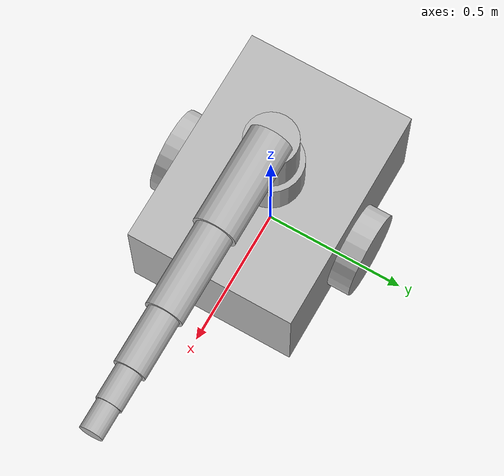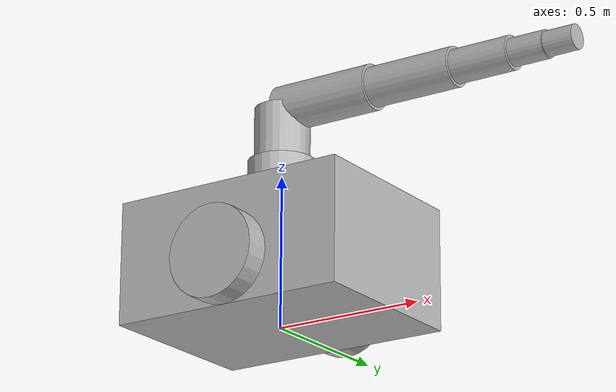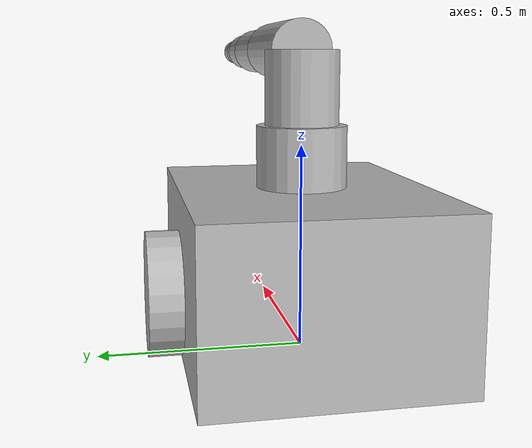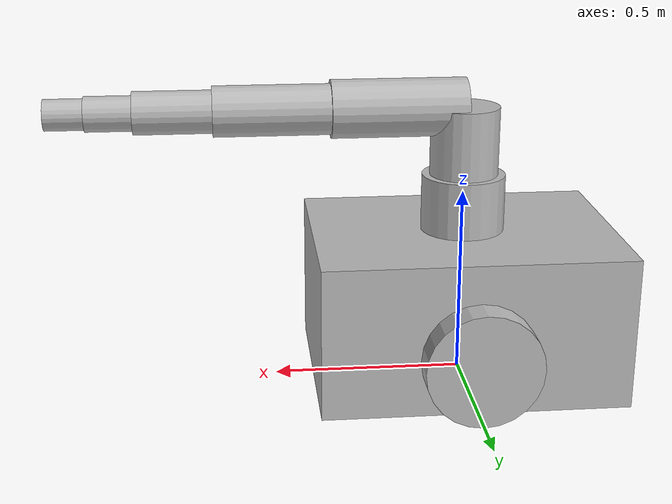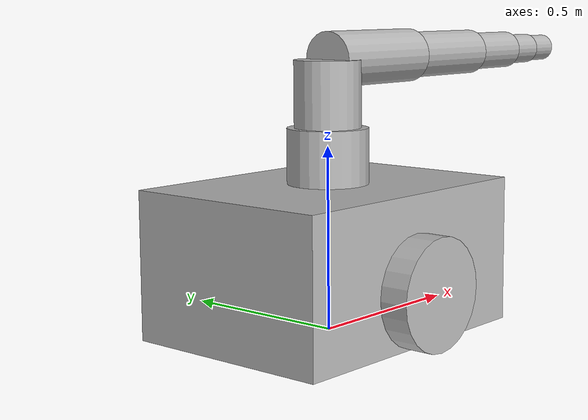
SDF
<?xml version='1.0' encoding='utf-8'?>
<sdf version="1.12">
  <model name="reference_mobile_manipulator">
    <static>false</static>
    <link name="base_link">
      <inertial>
        <mass>100</mass>
        <inertia>
          <ixx>8</ixx>
          <iyy>10</iyy>
          <izz>12</izz>
          <ixy>0</ixy>
          <ixz>0</ixz>
          <iyz>0</iyz>
        </inertia>
      </inertial>
      <visual name="base_link_visual">
        <pose relative_to="base_link">0 0 0.2 0 0 0</pose>
        <geometry>
          <box>
            <size>0.8 0.6 0.4</size>
          </box>
        </geometry>
      </visual>
      <collision name="base_link_collision">
        <pose relative_to="base_link">0 0 0.2 0 0 0</pose>
        <geometry>
          <box>
            <size>0.8 0.6 0.4</size>
          </box>
        </geometry>
      </collision>
      <visual name="base_link_arm_mount_visual">
        <pose relative_to="base_link">0 0 0.475 0 0 0</pose>
        <geometry>
          <cylinder>
            <radius>0.11</radius>
            <length>0.15</length>
          </cylinder>
        </geometry>
      </visual>
      <collision name="base_link_arm_mount_collision">
        <pose relative_to="base_link">0 0 0.475 0 0 0</pose>
        <geometry>
          <cylinder>
            <radius>0.11</radius>
            <length>0.15</length>
          </cylinder>
        </geometry>
      </collision>
      <sensor name="base_imu" type="imu">
        <update_rate>100</update_rate>
        <topic>/imu/data</topic>
      </sensor>
    </link>
    <link name="left_wheel_link">
      <inertial>
        <mass>5</mass>
        <inertia>
          <ixx>0.03</ixx>
          <iyy>0.06</iyy>
          <izz>0.03</izz>
          <ixy>0</ixy>
          <ixz>0</ixz>
          <iyz>0</iyz>
        </inertia>
      </inertial>
      <pose relative_to="base_link">0 0.34 0.15 0 0 0</pose>
      <visual name="left_wheel_link_visual">
        <pose relative_to="left_wheel_link">0 0 0 1.57079632679 0 0</pose>
        <geometry>
          <cylinder>
            <radius>0.15</radius>
            <length>0.08</length>
          </cylinder>
        </geometry>
      </visual>
      <collision name="left_wheel_link_collision">
        <pose relative_to="left_wheel_link">0 0 0 1.57079632679 0 0</pose>
        <geometry>
          <cylinder>
            <radius>0.15</radius>
            <length>0.08</length>
          </cylinder>
        </geometry>
      </collision>
    </link>
    <joint name="left_wheel_joint" type="continuous">
      <parent>base_link</parent>
      <child>left_wheel_link</child>
      <axis>
        <xyz>0 1 0</xyz>
      </axis>
    </joint>
    <link name="right_wheel_link">
      <inertial>
        <mass>5</mass>
        <inertia>
          <ixx>0.03</ixx>
          <iyy>0.06</iyy>
          <izz>0.03</izz>
          <ixy>0</ixy>
          <ixz>0</ixz>
          <iyz>0</iyz>
        </inertia>
      </inertial>
      <pose relative_to="base_link">0 -0.34 0.15 0 0 0</pose>
      <visual name="right_wheel_link_visual">
        <pose relative_to="right_wheel_link">0 0 0 1.57079632679 0 0</pose>
        <geometry>
          <cylinder>
            <radius>0.15</radius>
            <length>0.08</length>
          </cylinder>
        </geometry>
      </visual>
      <collision name="right_wheel_link_collision">
        <pose relative_to="right_wheel_link">0 0 0 1.57079632679 0 0</pose>
        <geometry>
          <cylinder>
            <radius>0.15</radius>
            <length>0.08</length>
          </cylinder>
        </geometry>
      </collision>
    </link>
    <joint name="right_wheel_joint" type="continuous">
      <parent>base_link</parent>
      <child>right_wheel_link</child>
      <axis>
        <xyz>0 1 0</xyz>
      </axis>
    </joint>
    <link name="arm_link_1">
      <pose relative_to="base_link">0 0 0.55 0 0 0</pose>
      <inertial>
        <mass>8</mass>
        <inertia>
          <ixx>0.12</ixx>
          <iyy>0.12</iyy>
          <izz>0.08</izz>
          <ixy>0</ixy>
          <ixz>0</ixz>
          <iyz>0</iyz>
        </inertia>
      </inertial>
      <visual name="arm_link_1_visual">
        <pose relative_to="arm_link_1">0 0 0.09 0 0 0</pose>
        <geometry>
          <cylinder>
            <radius>0.09</radius>
            <length>0.18</length>
          </cylinder>
        </geometry>
      </visual>
      <collision name="arm_link_1_collision">
        <pose relative_to="arm_link_1">0 0 0.09 0 0 0</pose>
        <geometry>
          <cylinder>
            <radius>0.09</radius>
            <length>0.18</length>
          </cylinder>
        </geometry>
      </collision>
    </link>
    <link name="arm_link_2">
      <pose relative_to="arm_link_1">0 0 0.18 0 0 0</pose>
      <inertial>
        <mass>7</mass>
        <inertia>
          <ixx>0.1</ixx>
          <iyy>0.1</iyy>
          <izz>0.06</izz>
          <ixy>0</ixy>
          <ixz>0</ixz>
          <iyz>0</iyz>
        </inertia>
      </inertial>
      <visual name="arm_link_2_visual">
        <pose relative_to="arm_link_2">0.175 0 0 0 1.57079632679 0</pose>
        <geometry>
          <cylinder>
            <radius>0.075</radius>
            <length>0.35</length>
          </cylinder>
        </geometry>
      </visual>
      <collision name="arm_link_2_collision">
        <pose relative_to="arm_link_2">0.175 0 0 0 1.57079632679 0</pose>
        <geometry>
          <cylinder>
            <radius>0.075</radius>
            <length>0.35</length>
          </cylinder>
        </geometry>
      </collision>
    </link>
    <link name="arm_link_3">
      <pose relative_to="arm_link_2">0.35 0 0 0 0 0</pose>
      <inertial>
        <mass>5</mass>
        <inertia>
          <ixx>0.07</ixx>
          <iyy>0.07</iyy>
          <izz>0.04</izz>
          <ixy>0</ixy>
          <ixz>0</ixz>
          <iyz>0</iyz>
        </inertia>
      </inertial>
      <visual name="arm_link_3_visual">
        <pose relative_to="arm_link_3">0.15 0 0 0 1.57079632679 0</pose>
        <geometry>
          <cylinder>
            <radius>0.065</radius>
            <length>0.3</length>
          </cylinder>
        </geometry>
      </visual>
      <collision name="arm_link_3_collision">
        <pose relative_to="arm_link_3">0.15 0 0 0 1.57079632679 0</pose>
        <geometry>
          <cylinder>
            <radius>0.065</radius>
            <length>0.3</length>
          </cylinder>
        </geometry>
      </collision>
    </link>
    <link name="arm_link_4">
      <pose relative_to="arm_link_3">0.3 0 0 0 0 0</pose>
      <inertial>
        <mass>4</mass>
        <inertia>
          <ixx>0.05</ixx>
          <iyy>0.05</iyy>
          <izz>0.03</izz>
          <ixy>0</ixy>
          <ixz>0</ixz>
          <iyz>0</iyz>
        </inertia>
      </inertial>
      <visual name="arm_link_4_visual">
        <pose relative_to="arm_link_4">0.1 0 0 0 1.57079632679 0</pose>
        <geometry>
          <cylinder>
            <radius>0.055</radius>
            <length>0.2</length>
          </cylinder>
        </geometry>
      </visual>
      <collision name="arm_link_4_collision">
        <pose relative_to="arm_link_4">0.1 0 0 0 1.57079632679 0</pose>
        <geometry>
          <cylinder>
            <radius>0.055</radius>
            <length>0.2</length>
          </cylinder>
        </geometry>
      </collision>
    </link>
    <link name="arm_link_5">
      <pose relative_to="arm_link_4">0.2 0 0 0 0 0</pose>
      <inertial>
        <mass>3</mass>
        <inertia>
          <ixx>0.03</ixx>
          <iyy>0.03</iyy>
          <izz>0.02</izz>
          <ixy>0</ixy>
          <ixz>0</ixz>
          <iyz>0</iyz>
        </inertia>
      </inertial>
      <visual name="arm_link_5_visual">
        <pose relative_to="arm_link_5">0.06 0 0 0 1.57079632679 0</pose>
        <geometry>
          <cylinder>
            <radius>0.045</radius>
            <length>0.12</length>
          </cylinder>
        </geometry>
      </visual>
      <collision name="arm_link_5_collision">
        <pose relative_to="arm_link_5">0.06 0 0 0 1.57079632679 0</pose>
        <geometry>
          <cylinder>
            <radius>0.045</radius>
            <length>0.12</length>
          </cylinder>
        </geometry>
      </collision>
    </link>
    <link name="arm_link_6">
      <pose relative_to="arm_link_5">0.12 0 0 0 0 0</pose>
      <inertial>
        <mass>2</mass>
        <inertia>
          <ixx>0.02</ixx>
          <iyy>0.02</iyy>
          <izz>0.01</izz>
          <ixy>0</ixy>
          <ixz>0</ixz>
          <iyz>0</iyz>
        </inertia>
      </inertial>
      <visual name="arm_link_6_visual">
        <pose relative_to="arm_link_6">0.05 0 0 0 1.57079632679 0</pose>
        <geometry>
          <cylinder>
            <radius>0.04</radius>
            <length>0.1</length>
          </cylinder>
        </geometry>
      </visual>
      <collision name="arm_link_6_collision">
        <pose relative_to="arm_link_6">0.05 0 0 0 1.57079632679 0</pose>
        <geometry>
          <cylinder>
            <radius>0.04</radius>
            <length>0.1</length>
          </cylinder>
        </geometry>
      </collision>
    </link>
    <joint name="joint_1" type="revolute">
      <parent>base_link</parent>
      <child>arm_link_1</child>
      <pose relative_to="base_link">0 0 0.55 0 0 0</pose>
      <axis>
        <xyz>0 0 1</xyz>
        <limit>
          <lower>-3.14</lower>
          <upper>3.14</upper>
          <effort>120</effort>
          <velocity>1.5</velocity>
        </limit>
      </axis>
    </joint>
    <joint name="joint_2" type="revolute">
      <parent>arm_link_1</parent>
      <child>arm_link_2</child>
      <pose relative_to="arm_link_1">0 0 0.18 0 0 0</pose>
      <axis>
        <xyz>0 1 0</xyz>
        <limit>
          <lower>-1.5</lower>
          <upper>1.5</upper>
          <effort>120</effort>
          <velocity>1.2</velocity>
        </limit>
      </axis>
    </joint>
    <joint name="joint_3" type="revolute">
      <parent>arm_link_2</parent>
      <child>arm_link_3</child>
      <pose relative_to="arm_link_2">0.35 0 0 0 0 0</pose>
      <axis>
        <xyz>0 1 0</xyz>
        <limit>
          <lower>-2.2</lower>
          <upper>2.2</upper>
          <effort>100</effort>
          <velocity>1.5</velocity>
        </limit>
      </axis>
    </joint>
    <joint name="joint_4" type="revolute">
      <parent>arm_link_3</parent>
      <child>arm_link_4</child>
      <pose relative_to="arm_link_3">0.3 0 0 0 0 0</pose>
      <axis>
        <xyz>1 0 0</xyz>
        <limit>
          <lower>-3.14</lower>
          <upper>3.14</upper>
          <effort>60</effort>
          <velocity>2</velocity>
        </limit>
      </axis>
    </joint>
    <joint name="joint_5" type="revolute">
      <parent>arm_link_4</parent>
      <child>arm_link_5</child>
      <pose relative_to="arm_link_4">0.2 0 0 0 0 0</pose>
      <axis>
        <xyz>0 1 0</xyz>
        <limit>
          <lower>-2</lower>
          <upper>2</upper>
          <effort>40</effort>
          <velocity>2</velocity>
        </limit>
      </axis>
    </joint>
    <joint name="joint_6" type="revolute">
      <parent>arm_link_5</parent>
      <child>arm_link_6</child>
      <pose relative_to="arm_link_5">0.12 0 0 0 0 0</pose>
      <axis>
        <xyz>1 0 0</xyz>
        <limit>
          <lower>-3.14</lower>
          <upper>3.14</upper>
          <effort>25</effort>
          <velocity>2.5</velocity>
        </limit>
      </axis>
    </joint>
    <link name="tool0">
      <pose relative_to="arm_link_6">0.1 0 0 0 0 0</pose>
    </link>
    <joint name="tool0_fixed" type="fixed">
      <parent>arm_link_6</parent>
      <child>tool0</child>
      <pose relative_to="arm_link_6">0.1 0 0 0 0 0</pose>
    </joint>
    <plugin name="gz_ros2_control" filename="libgz_ros2_control-system.so">
      <parameters>controllers.yaml</parameters>
    </plugin>
  </model>
</sdf>
